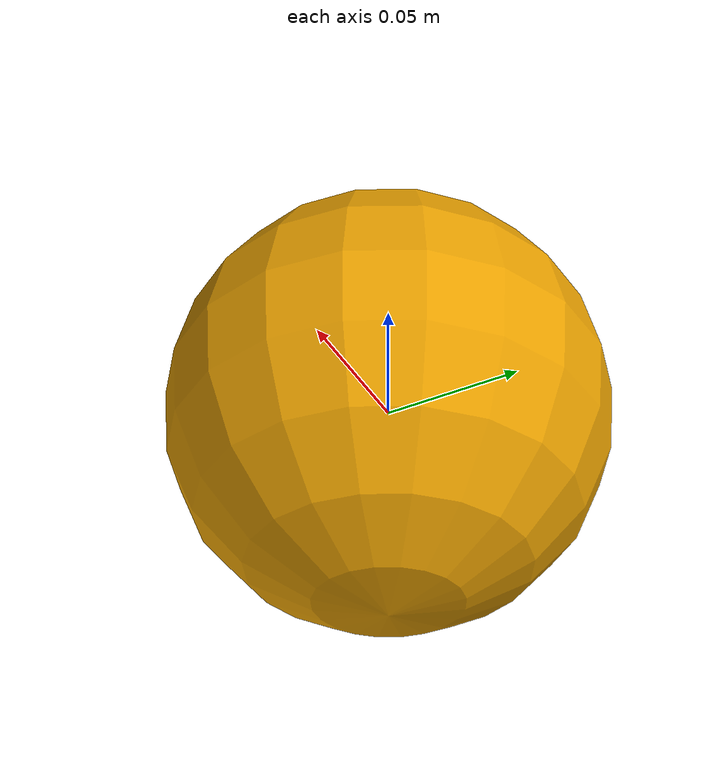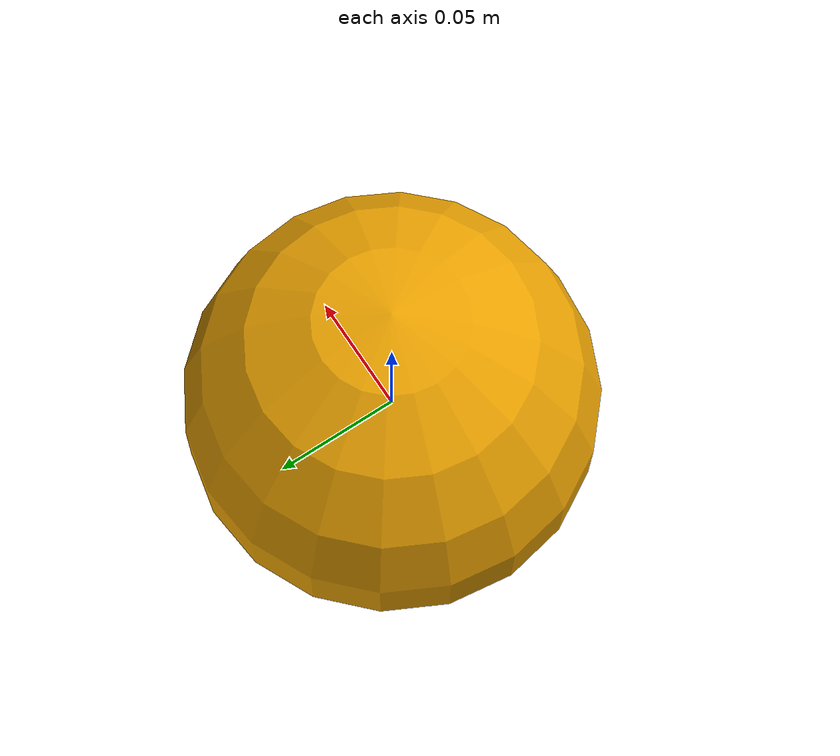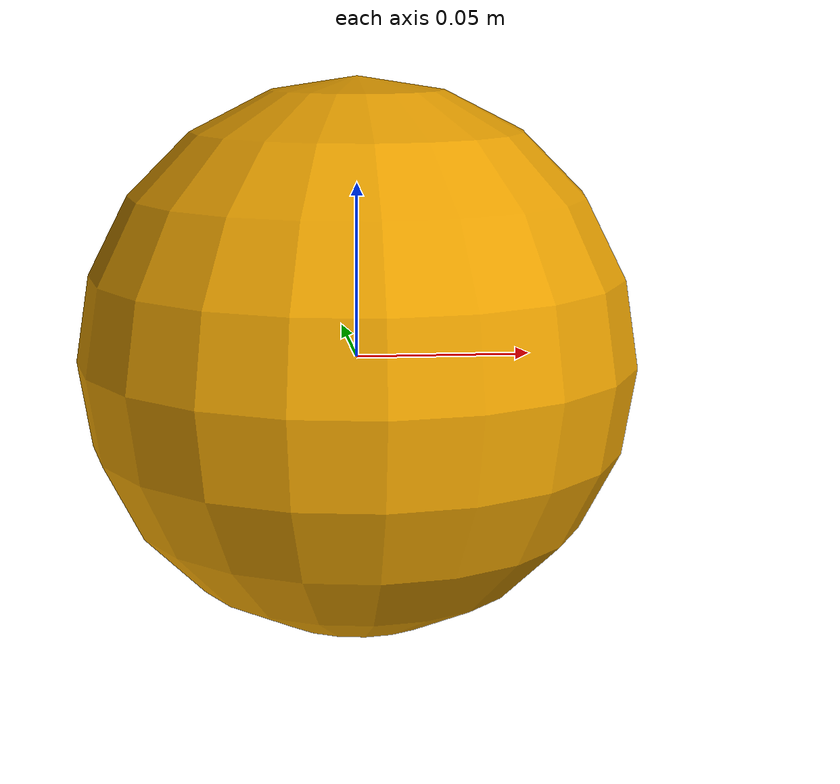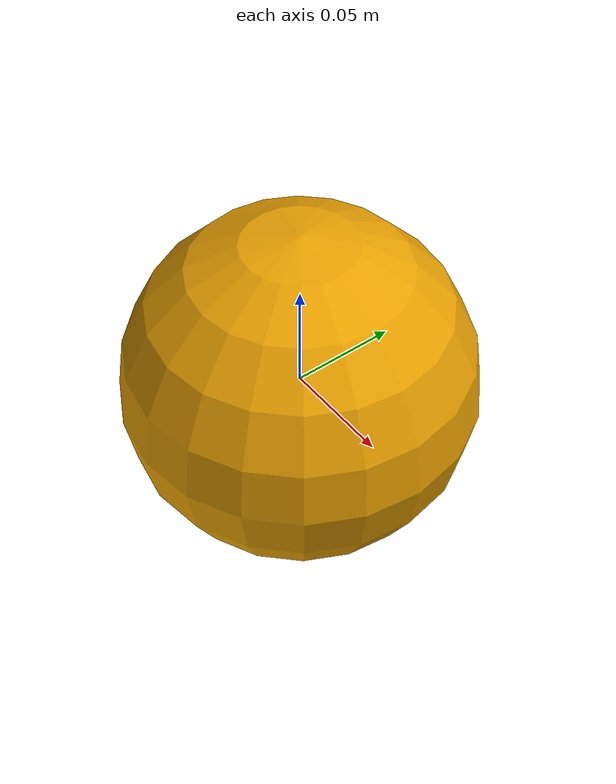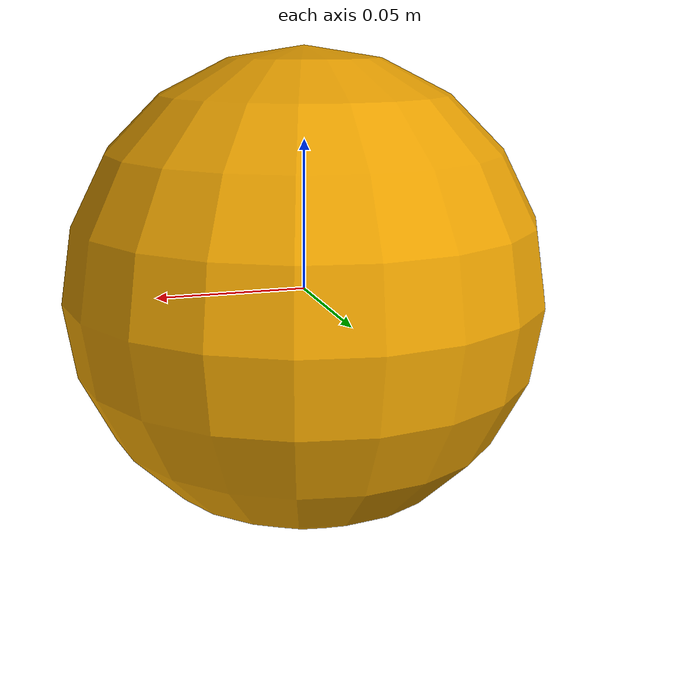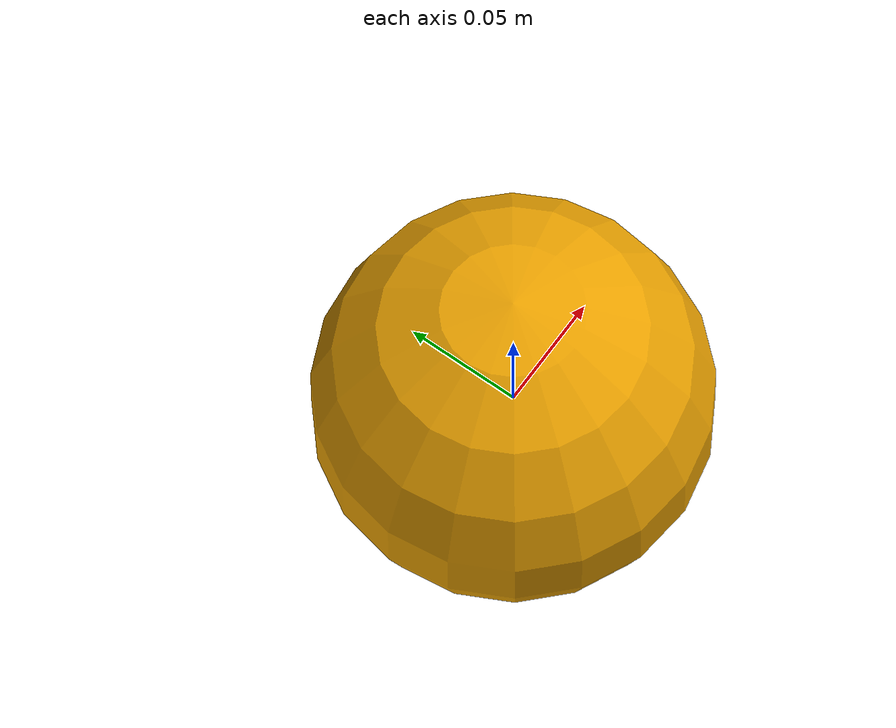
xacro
<?xml version="1.0" encoding="UTF-8"?>
<robot xmlns:xacro="http://ros.org/wiki/xacro" name="sphere">

    <!-- arguments -->
    <xacro:arg name="sphere_mass" default="0.2"/>
    <xacro:arg name="sphere_radius" default="0.08"/>

    <!-- inertia_scaling_factor = 1 means ground truth as calculated by formula -->
    <xacro:arg name="inertia_scaling_factor" default="1"/>

    <xacro:property name="link_name" value="sphere_link"/>
    <xacro:include filename="$(find description)/urdf/xacro_macros/inertia_tensors.xacro"/>

    <link name="${link_name}">
        <visual>
            <origin xyz="0 0 0" rpy="0 0 0" />
            <geometry>
                <sphere radius="$(arg sphere_radius)" />
            </geometry>
        </visual>
        <collision>
            <origin xyz="0 0 0" rpy="0 0 0" />
            <geometry>
                <sphere radius="$(arg sphere_radius)" />
            </geometry>
        </collision>
        <inertial>
            <origin xyz="0 0 0" rpy="0 0 0"/>
            <mass value="$(arg sphere_mass)"/>
            <xacro:sphere_inertia_mod m="$(arg sphere_mass)" r="$(arg sphere_radius)" scaling_factor="$(arg inertia_scaling_factor)"/>
        </inertial>
    </link>

    <xacro:include filename="$(find description)/urdf/environment/object.gazebo.xacro"/>
</robot>

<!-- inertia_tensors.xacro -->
<robot xmlns:xacro="http://www.ros.org/wiki/xacro">

  <!-- x = depth, y = width, z = height -->
  <xacro:macro name="cuboid_inertia" params="m x y z">
    <inertia ixx="${(1.0 / 12.0) * m * (y * y + z * z)}" ixy="0.0" ixz="0.0"
	     iyy="${(1.0 / 12.0) * m * (x * x + z * z)}" iyz="0.0"
	     izz="${(1.0 / 12.0) * m * (x * x + y * y)}"/>
  </xacro:macro>

  <xacro:macro name="cuboid_inertia_mod" params="m x y z scaling_factor">
    <inertia ixx="${(scaling_factor / 12.0) * m * (y * y + z * z)}" ixy="0.0" ixz="0.0"
	     iyy="${(scaling_factor / 12.0) * m * (x * x + z * z)}" iyz="0.0"
	     izz="${(scaling_factor / 12.0) * m * (x * x + y * y)}"/>
  </xacro:macro>

  <xacro:macro name="ellipsoid_inertia" params="m x y z">
    <inertia ixx="${(1.0 / 5.0) * m * (y * y + z * z)}" ixy="0.0" ixz="0.0"
	     iyy="${(1.0 / 5.0) * m * (x * x + z * z)}" iyz="0.0"
	     izz="${(1.0 / 5.0) * m * (x * x + y * y)}"/>
  </xacro:macro>

  <xacro:macro name="sphere_inertia" params="m r">
    <inertia ixx="${(2.0 / 5.0) * m * (r * r)}" ixy="0.0" ixz="0.0"
	     iyy="${(2.0 / 5.0) * m * (r * r)}" iyz="0.0"
	     izz="${(2.0 / 5.0) * m * (r * r)}"/>
  </xacro:macro>

  <xacro:macro name="sphere_inertia_mod" params="m r scaling_factor">
    <inertia ixx="${(scaling_factor * 2.0 / 5.0) * m * (r * r)}" ixy="0.0" ixz="0.0"
	     iyy="${(scaling_factor * 2.0 / 5.0) * m * (r * r)}" iyz="0.0"
	     izz="${(scaling_factor * 2.0 / 5.0) * m * (r * r)}"/>
  </xacro:macro>

  <!-- Assuming z-axis goes along height of cylinder -->
  <xacro:macro name="cylinder_inertia" params="m r h">
    <inertia ixx="${(1.0 / 12.0) * m * (3 * r * r + h * h)}" ixy="0.0" ixz="0.0"
	     iyy="${(1.0 / 12.0) * m * (3 * r * r + h * h)}" iyz="0.0"
	     izz="${(1.0 / 2.0) * m * (r * r)}"/>
  </xacro:macro>

  <xacro:macro name="cylinder_inertia_mod" params="m r h scaling_factor">
    <inertia ixx="${(scaling_factor / 12.0) * m * (3 * r * r + h * h)}" ixy="0.0" ixz="0.0"
	     iyy="${(scaling_factor / 12.0) * m * (3 * r * r + h * h)}" iyz="0.0"
	     izz="${(scaling_factor / 2.0) * m * (r * r)}"/>
  </xacro:macro>

</robot>
